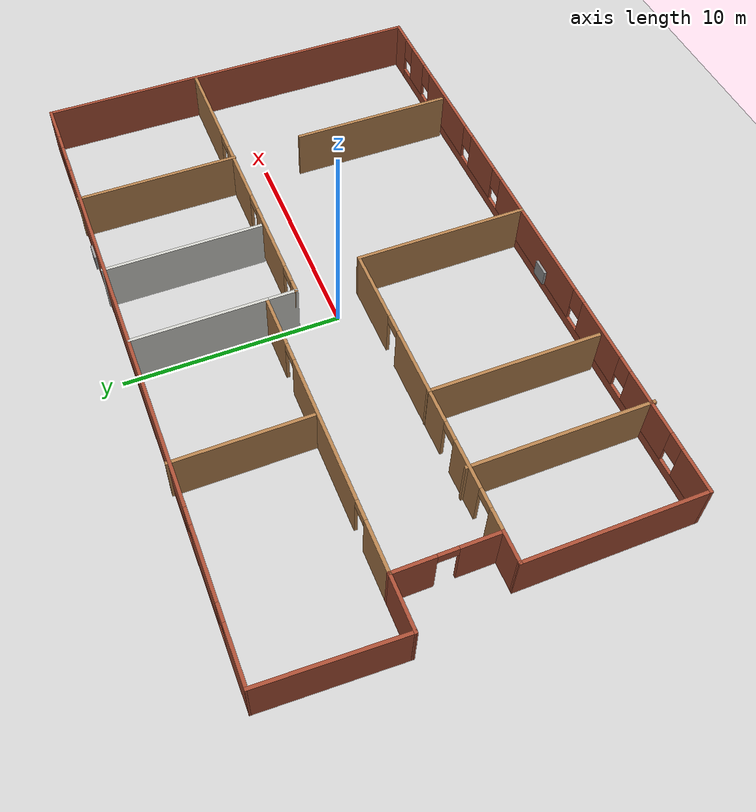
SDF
<sdf version="1.7">
 <world name="default">
  <model name="ground_plane">
   <static>1</static>
   <link name="link1">
    <collision name="collision">
     <geometry><plane><normal>0 0 1</normal><size>100 100</size></plane></geometry>
     <surface>
      <contact><collide_bitmask>65535</collide_bitmask></contact>
      <friction><ode><mu>100</mu><mu2>50</mu2></ode></friction>
     </surface>
    </collision>
    <visual name="visual">
     <cast_shadows>0</cast_shadows>
     <geometry><plane><normal>0 0 1</normal><size>100 100</size></plane></geometry>
     <material>
      <script><uri>file://media/materials/scripts/gazebo.material</uri><name>Gazebo/Grey</name></script>
     </material>
    </visual>
   </link>
  </model>
  <model name="Floor_Plan">
   <pose>-0.077917 -0.10604 0 0 -0 0</pose>
   <link name="Wall_0">
    <pose>0.126492 9.44039 0 0 -0 0</pose>
    <visual name="Wall_0_Visual_0">
     <pose>-14.2048 0 1.25 0 -0 0</pose>
     <geometry><box><size>2.5905 0.15 2.5</size></box></geometry>
     <material>
      <script><uri>file://media/materials/scripts/gazebo.material</uri><name>Gazebo/Bricks</name></script>
      <ambient>1 1 1 1</ambient>
     </material>
     <meta><layer>0</layer></meta>
    </visual>
    <collision name="Wall_0_Collision_0">
     <geometry><box><size>2.5905 0.15 2.5</size></box></geometry>
     <pose>-14.2048 0 1.25 0 -0 0</pose>
    </collision>
    <visual name="Wall_0_Visual_1">
     <pose>1.29525 0 0.25 0 -0 0</pose>
     <geometry><box><size>28.4095 0.15 0.5</size></box></geometry>
     <material>
      <script><uri>file://media/materials/scripts/gazebo.material</uri><name>Gazebo/Bricks</name></script>
      <ambient>1 1 1 1</ambient>
     </material>
     <meta><layer>0</layer></meta>
    </visual>
    <collision name="Wall_0_Collision_1">
     <geometry><box><size>28.4095 0.15 0.5</size></box></geometry>
     <pose>1.29525 0 0.25 0 -0 0</pose>
    </collision>
    <visual name="Wall_0_Visual_2">
     <pose>-10.4857 0 1.5 0 -0 0</pose>
     <geometry><box><size>3.24758 0.15 2</size></box></geometry>
     <material>
      <script><uri>file://media/materials/scripts/gazebo.material</uri><name>Gazebo/Bricks</name></script>
      <ambient>1 1 1 1</ambient>
     </material>
     <meta><layer>0</layer></meta>
    </visual>
    <collision name="Wall_0_Collision_2">
     <geometry><box><size>3.24758 0.15 2</size></box></geometry>
     <pose>-10.4857 0 1.5 0 -0 0</pose>
    </collision>
    <visual name="Wall_0_Visual_3">
     <pose>1.51746 0 1.5 0 -0 0</pose>
     <geometry><box><size>19.1588 0.15 2</size></box></geometry>
     <material>
      <script><uri>file://media/materials/scripts/gazebo.material</uri><name>Gazebo/Bricks</name></script>
      <ambient>1 1 1 1</ambient>
     </material>
     <meta><layer>0</layer></meta>
    </visual>
    <collision name="Wall_0_Collision_3">
     <geometry><box><size>19.1588 0.15 2</size></box></geometry>
     <pose>1.51746 0 1.5 0 -0 0</pose>
    </collision>
    <visual name="Wall_0_Visual_4">
     <pose>12.3343 0 1.5 0 -0 0</pose>
     <geometry><box><size>0.874861 0.15 2</size></box></geometry>
     <material>
      <script><uri>file://media/materials/scripts/gazebo.material</uri><name>Gazebo/Bricks</name></script>
      <ambient>1 1 1 1</ambient>
     </material>
     <meta><layer>0</layer></meta>
    </visual>
    <collision name="Wall_0_Collision_4">
     <geometry><box><size>0.874861 0.15 2</size></box></geometry>
     <pose>12.3343 0 1.5 0 -0 0</pose>
    </collision>
    <visual name="Wall_0_Visual_5">
     <pose>14.5358 0 1.5 0 -0 0</pose>
     <geometry><box><size>1.9283 0.15 2</size></box></geometry>
     <material>
      <script><uri>file://media/materials/scripts/gazebo.material</uri><name>Gazebo/Bricks</name></script>
      <ambient>1 1 1 1</ambient>
     </material>
     <meta><layer>0</layer></meta>
    </visual>
    <collision name="Wall_0_Collision_5">
     <geometry><box><size>1.9283 0.15 2</size></box></geometry>
     <pose>14.5358 0 1.5 0 -0 0</pose>
    </collision>
    <visual name="Wall_0_Visual_6">
     <pose>-12.5095 0 1.9 0 -0 0</pose>
     <geometry><box><size>0.8 0.15 1.2</size></box></geometry>
     <material>
      <script><uri>file://media/materials/scripts/gazebo.material</uri><name>Gazebo/Bricks</name></script>
      <ambient>1 1 1 1</ambient>
     </material>
     <meta><layer>0</layer></meta>
    </visual>
    <collision name="Wall_0_Collision_6">
     <geometry><box><size>0.8 0.15 1.2</size></box></geometry>
     <pose>-12.5095 0 1.9 0 -0 0</pose>
    </collision>
    <visual name="Wall_0_Visual_7">
     <pose>-8.46192 0 1.9 0 -0 0</pose>
     <geometry><box><size>0.8 0.15 1.2</size></box></geometry>
     <material>
      <script><uri>file://media/materials/scripts/gazebo.material</uri><name>Gazebo/Bricks</name></script>
      <ambient>1 1 1 1</ambient>
     </material>
     <meta><layer>0</layer></meta>
    </visual>
    <collision name="Wall_0_Collision_7">
     <geometry><box><size>0.8 0.15 1.2</size></box></geometry>
     <pose>-8.46192 0 1.9 0 -0 0</pose>
    </collision>
    <visual name="Wall_0_Visual_8">
     <pose>11.4968 0 1.9 0 -0 0</pose>
     <geometry><box><size>0.8 0.15 1.2</size></box></geometry>
     <material>
      <script><uri>file://media/materials/scripts/gazebo.material</uri><name>Gazebo/Bricks</name></script>
      <ambient>1 1 1 1</ambient>
     </material>
     <meta><layer>0</layer></meta>
    </visual>
    <collision name="Wall_0_Collision_8">
     <geometry><box><size>0.8 0.15 1.2</size></box></geometry>
     <pose>11.4968 0 1.9 0 -0 0</pose>
    </collision>
    <visual name="Wall_0_Visual_9">
     <pose>13.1717 0 1.9 0 -0 0</pose>
     <geometry><box><size>0.8 0.15 1.2</size></box></geometry>
     <material>
      <script><uri>file://media/materials/scripts/gazebo.material</uri><name>Gazebo/Bricks</name></script>
      <ambient>1 1 1 1</ambient>
     </material>
     <meta><layer>0</layer></meta>
    </visual>
    <collision name="Wall_0_Collision_9">
     <geometry><box><size>0.8 0.15 1.2</size></box></geometry>
     <pose>13.1717 0 1.9 0 -0 0</pose>
    </collision>
   </link>
   <link name="Wall_1">
    <collision name="Wall_1_Collision">
     <geometry><box><size>19 0.15 2.5</size></box></geometry>
     <pose>0 0 1.25 0 -0 0</pose>
    </collision>
    <visual name="Wall_1_Visual">
     <pose>0 0 1.25 0 -0 0</pose>
     <geometry><box><size>19 0.15 2.5</size></box></geometry>
     <material>
      <script><uri>file://media/materials/scripts/gazebo.material</uri><name>Gazebo/Bricks</name></script>
      <ambient>1 1 1 1</ambient>
     </material>
     <meta><layer>0</layer></meta>
    </visual>
    <pose>15.5515 0.015393 0 0 -0 -1.5708</pose>
   </link>
   <link name="Wall_10">
    <collision name="Wall_10_Collision">
     <geometry><box><size>6.25 0.15 2.5</size></box></geometry>
     <pose>0 0 1.25 0 -0 0</pose>
    </collision>
    <visual name="Wall_10_Visual">
     <pose>0 0 1.25 0 -0 0</pose>
     <geometry><box><size>6.25 0.15 2.5</size></box></geometry>
     <material>
      <script><uri>file://media/materials/scripts/gazebo.material</uri><name>Gazebo/CeilingTiled</name></script>
      <ambient>1 1 1 1</ambient>
     </material>
     <meta><layer>0</layer></meta>
    </visual>
    <pose>0.401492 6.34039 0 0 -0 1.5708</pose>
   </link>
   <link name="Wall_12">
    <collision name="Wall_12_Collision">
     <geometry><box><size>6.25 0.15 2.5</size></box></geometry>
     <pose>0 0 1.25 0 -0 0</pose>
    </collision>
    <visual name="Wall_12_Visual">
     <pose>0 0 1.25 0 -0 0</pose>
     <geometry><box><size>6.25 0.15 2.5</size></box></geometry>
     <material>
      <script><uri>file://media/materials/scripts/gazebo.material</uri><name>Gazebo/Wood</name></script>
      <ambient>1 1 1 1</ambient>
     </material>
     <meta><layer>0</layer></meta>
    </visual>
    <pose>-5.86966 6.49851 0 0 -0 -1.5708</pose>
   </link>
   <link name="Wall_14">
    <collision name="Wall_14_Collision">
     <geometry><box><size>1.5 0.15 2.5</size></box></geometry>
     <pose>0 0 1.25 0 -0 0</pose>
    </collision>
    <visual name="Wall_14_Visual">
     <pose>0 0 1.25 0 -0 0</pose>
     <geometry><box><size>1.5 0.15 2.5</size></box></geometry>
     <material>
      <script><uri>file://media/materials/scripts/gazebo.material</uri><name>Gazebo/CeilingTiled</name></script>
      <ambient>1 1 1 1</ambient>
     </material>
     <meta><layer>0</layer></meta>
    </visual>
    <pose>0.401492 2.61539 0 0 -0 -1.5708</pose>
   </link>
   <link name="Wall_15">
    <pose>7.95149 1.94039 0 0 -0 0</pose>
    <visual name="Wall_15_Visual_0">
     <pose>-7.28606 0 1.25 0 -0 0</pose>
     <geometry><box><size>0.67788 0.15 2.5</size></box></geometry>
     <material>
      <script><uri>file://media/materials/scripts/gazebo.material</uri><name>Gazebo/Wood</name></script>
      <ambient>1 1 1 1</ambient>
     </material>
     <meta><layer>0</layer></meta>
    </visual>
    <collision name="Wall_15_Collision_0">
     <geometry><box><size>0.67788 0.15 2.5</size></box></geometry>
     <pose>-7.28606 0 1.25 0 -0 0</pose>
    </collision>
    <visual name="Wall_15_Visual_1">
     <pose>-4.17221 0 1.25 0 -0 0</pose>
     <geometry><box><size>3.74981 0.15 2.5</size></box></geometry>
     <material>
      <script><uri>file://media/materials/scripts/gazebo.material</uri><name>Gazebo/Wood</name></script>
      <ambient>1 1 1 1</ambient>
     </material>
     <meta><layer>0</layer></meta>
    </visual>
    <collision name="Wall_15_Collision_1">
     <geometry><box><size>3.74981 0.15 2.5</size></box></geometry>
     <pose>-4.17221 0 1.25 0 -0 0</pose>
    </collision>
    <visual name="Wall_15_Visual_2">
     <pose>0.357523 0 1.25 0 -0 0</pose>
     <geometry><box><size>3.50966 0.15 2.5</size></box></geometry>
     <material>
      <script><uri>file://media/materials/scripts/gazebo.material</uri><name>Gazebo/Wood</name></script>
      <ambient>1 1 1 1</ambient>
     </material>
     <meta><layer>0</layer></meta>
    </visual>
    <collision name="Wall_15_Collision_2">
     <geometry><box><size>3.50966 0.15 2.5</size></box></geometry>
     <pose>0.357523 0 1.25 0 -0 0</pose>
    </collision>
    <visual name="Wall_15_Visual_3">
     <pose>5.31868 0 1.25 0 -0 0</pose>
     <geometry><box><size>4.61265 0.15 2.5</size></box></geometry>
     <material>
      <script><uri>file://media/materials/scripts/gazebo.material</uri><name>Gazebo/Wood</name></script>
      <ambient>1 1 1 1</ambient>
     </material>
     <meta><layer>0</layer></meta>
    </visual>
    <collision name="Wall_15_Collision_3">
     <geometry><box><size>4.61265 0.15 2.5</size></box></geometry>
     <pose>5.31868 0 1.25 0 -0 0</pose>
    </collision>
    <visual name="Wall_15_Visual_4">
     <pose>-6.49712 0 2.25 0 -0 0</pose>
     <geometry><box><size>0.9 0.15 0.5</size></box></geometry>
     <material>
      <script><uri>file://media/materials/scripts/gazebo.material</uri><name>Gazebo/Wood</name></script>
      <ambient>1 1 1 1</ambient>
     </material>
     <meta><layer>0</layer></meta>
    </visual>
    <collision name="Wall_15_Collision_4">
     <geometry><box><size>0.9 0.15 0.5</size></box></geometry>
     <pose>-6.49712 0 2.25 0 -0 0</pose>
    </collision>
    <visual name="Wall_15_Visual_5">
     <pose>-1.84731 0 2.25 0 -0 0</pose>
     <geometry><box><size>0.9 0.15 0.5</size></box></geometry>
     <material>
      <script><uri>file://media/materials/scripts/gazebo.material</uri><name>Gazebo/Wood</name></script>
      <ambient>1 1 1 1</ambient>
     </material>
     <meta><layer>0</layer></meta>
    </visual>
    <collision name="Wall_15_Collision_5">
     <geometry><box><size>0.9 0.15 0.5</size></box></geometry>
     <pose>-1.84731 0 2.25 0 -0 0</pose>
    </collision>
    <visual name="Wall_15_Visual_6">
     <pose>2.56235 0 2.25 0 -0 0</pose>
     <geometry><box><size>0.9 0.15 0.5</size></box></geometry>
     <material>
      <script><uri>file://media/materials/scripts/gazebo.material</uri><name>Gazebo/Wood</name></script>
      <ambient>1 1 1 1</ambient>
     </material>
     <meta><layer>0</layer></meta>
    </visual>
    <collision name="Wall_15_Collision_6">
     <geometry><box><size>0.9 0.15 0.5</size></box></geometry>
     <pose>2.56235 0 2.25 0 -0 0</pose>
    </collision>
   </link>
   <link name="Wall_17">
    <collision name="Wall_17_Collision">
     <geometry><box><size>7.5 0.15 2.5</size></box></geometry>
     <pose>0 0 1.25 0 -0 0</pose>
    </collision>
    <visual name="Wall_17_Visual">
     <pose>0 0 1.25 0 -0 0</pose>
     <geometry><box><size>7.5 0.15 2.5</size></box></geometry>
     <material>
      <script><uri>file://media/materials/scripts/gazebo.material</uri><name>Gazebo/CeilingTiled</name></script>
      <ambient>1 1 1 1</ambient>
     </material>
     <meta><layer>0</layer></meta>
    </visual>
    <pose>4.59822 5.82699 0 0 -0 -1.5708</pose>
   </link>
   <link name="Wall_19">
    <collision name="Wall_19_Collision">
     <geometry><box><size>7.75 0.15 2.5</size></box></geometry>
     <pose>0 0 1.25 0 -0 0</pose>
    </collision>
    <visual name="Wall_19_Visual">
     <pose>0 0 1.25 0 -0 0</pose>
     <geometry><box><size>7.75 0.15 2.5</size></box></geometry>
     <material>
      <script><uri>file://media/materials/scripts/gazebo.material</uri><name>Gazebo/Wood</name></script>
      <ambient>1 1 1 1</ambient>
     </material>
     <meta><layer>0</layer></meta>
    </visual>
    <pose>9.25061 5.70199 0 0 -0 -1.5708</pose>
   </link>
   <link name="Wall_2">
    <pose>0.501492 -9.40961 0 0 -0 3.14159</pose>
    <visual name="Wall_2_Visual_0">
     <pose>-14.52 0 1.25 0 -0 0</pose>
     <geometry><box><size>1.21002 0.15 2.5</size></box></geometry>
     <material>
      <script><uri>file://media/materials/scripts/gazebo.material</uri><name>Gazebo/Bricks</name></script>
      <ambient>1 1 1 1</ambient>
     </material>
     <meta><layer>0</layer></meta>
    </visual>
    <collision name="Wall_2_Collision_0">
     <geometry><box><size>1.21002 0.15 2.5</size></box></geometry>
     <pose>-14.52 0 1.25 0 -0 0</pose>
    </collision>
    <visual name="Wall_2_Visual_1">
     <pose>0.605012 0 0.25 0 -0 0</pose>
     <geometry><box><size>29.04 0.15 0.5</size></box></geometry>
     <material>
      <script><uri>file://media/materials/scripts/gazebo.material</uri><name>Gazebo/Bricks</name></script>
      <ambient>1 1 1 1</ambient>
     </material>
     <meta><layer>0</layer></meta>
    </visual>
    <collision name="Wall_2_Collision_1">
     <geometry><box><size>29.04 0.15 0.5</size></box></geometry>
     <pose>0.605012 0 0.25 0 -0 0</pose>
    </collision>
    <visual name="Wall_2_Visual_2">
     <pose>-12.3984 0 1.5 0 -0 0</pose>
     <geometry><box><size>1.43315 0.15 2</size></box></geometry>
     <material>
      <script><uri>file://media/materials/scripts/gazebo.material</uri><name>Gazebo/Bricks</name></script>
      <ambient>1 1 1 1</ambient>
     </material>
     <meta><layer>0</layer></meta>
    </visual>
    <collision name="Wall_2_Collision_2">
     <geometry><box><size>1.43315 0.15 2</size></box></geometry>
     <pose>-12.3984 0 1.5 0 -0 0</pose>
    </collision>
    <visual name="Wall_2_Visual_3">
     <pose>-8.7928 0 1.5 0 -0 0</pose>
     <geometry><box><size>4.17806 0.15 2</size></box></geometry>
     <material>
      <script><uri>file://media/materials/scripts/gazebo.material</uri><name>Gazebo/Bricks</name></script>
      <ambient>1 1 1 1</ambient>
     </material>
     <meta><layer>0</layer></meta>
    </visual>
    <collision name="Wall_2_Collision_3">
     <geometry><box><size>4.17806 0.15 2</size></box></geometry>
     <pose>-8.7928 0 1.5 0 -0 0</pose>
    </collision>
    <visual name="Wall_2_Visual_4">
     <pose>-4.72196 0 1.5 0 -0 0</pose>
     <geometry><box><size>2.36363 0.15 2</size></box></geometry>
     <material>
      <script><uri>file://media/materials/scripts/gazebo.material</uri><name>Gazebo/Bricks</name></script>
      <ambient>1 1 1 1</ambient>
     </material>
     <meta><layer>0</layer></meta>
    </visual>
    <collision name="Wall_2_Collision_4">
     <geometry><box><size>2.36363 0.15 2</size></box></geometry>
     <pose>-4.72196 0 1.5 0 -0 0</pose>
    </collision>
    <visual name="Wall_2_Visual_5">
     <pose>0.837652 0 1.5 0 -0 0</pose>
     <geometry><box><size>7.15559 0.15 2</size></box></geometry>
     <material>
      <script><uri>file://media/materials/scripts/gazebo.material</uri><name>Gazebo/Bricks</name></script>
      <ambient>1 1 1 1</ambient>
     </material>
     <meta><layer>0</layer></meta>
    </visual>
    <collision name="Wall_2_Collision_5">
     <geometry><box><size>7.15559 0.15 2</size></box></geometry>
     <pose>0.837652 0 1.5 0 -0 0</pose>
    </collision>
    <visual name="Wall_2_Visual_6">
     <pose>6.76945 0 1.5 0 -0 0</pose>
     <geometry><box><size>3.10801 0.15 2</size></box></geometry>
     <material>
      <script><uri>file://media/materials/scripts/gazebo.material</uri><name>Gazebo/Bricks</name></script>
      <ambient>1 1 1 1</ambient>
     </material>
     <meta><layer>0</layer></meta>
    </visual>
    <collision name="Wall_2_Collision_6">
     <geometry><box><size>3.10801 0.15 2</size></box></geometry>
     <pose>6.76945 0 1.5 0 -0 0</pose>
    </collision>
    <visual name="Wall_2_Visual_7">
     <pose>10.7007 0 1.5 0 -0 0</pose>
     <geometry><box><size>3.15453 0.15 2</size></box></geometry>
     <material>
      <script><uri>file://media/materials/scripts/gazebo.material</uri><name>Gazebo/Bricks</name></script>
      <ambient>1 1 1 1</ambient>
     </material>
     <meta><layer>0</layer></meta>
    </visual>
    <collision name="Wall_2_Collision_7">
     <geometry><box><size>3.15453 0.15 2</size></box></geometry>
     <pose>10.7007 0 1.5 0 -0 0</pose>
    </collision>
    <visual name="Wall_2_Visual_8">
     <pose>14.1015 0 1.5 0 -0 0</pose>
     <geometry><box><size>2.04701 0.15 2</size></box></geometry>
     <material>
      <script><uri>file://media/materials/scripts/gazebo.material</uri><name>Gazebo/Bricks</name></script>
      <ambient>1 1 1 1</ambient>
     </material>
     <meta><layer>0</layer></meta>
    </visual>
    <collision name="Wall_2_Collision_8">
     <geometry><box><size>2.04701 0.15 2</size></box></geometry>
     <pose>14.1015 0 1.5 0 -0 0</pose>
    </collision>
    <visual name="Wall_2_Visual_9">
     <pose>-13.515 0 1.9 0 -0 0</pose>
     <geometry><box><size>0.8 0.15 1.2</size></box></geometry>
     <material>
      <script><uri>file://media/materials/scripts/gazebo.material</uri><name>Gazebo/Bricks</name></script>
      <ambient>1 1 1 1</ambient>
     </material>
     <meta><layer>0</layer></meta>
    </visual>
    <collision name="Wall_2_Collision_9">
     <geometry><box><size>0.8 0.15 1.2</size></box></geometry>
     <pose>-13.515 0 1.9 0 -0 0</pose>
    </collision>
    <visual name="Wall_2_Visual_10">
     <pose>-11.2818 0 1.9 0 -0 0</pose>
     <geometry><box><size>0.8 0.15 1.2</size></box></geometry>
     <material>
      <script><uri>file://media/materials/scripts/gazebo.material</uri><name>Gazebo/Bricks</name></script>
      <ambient>1 1 1 1</ambient>
     </material>
     <meta><layer>0</layer></meta>
    </visual>
    <collision name="Wall_2_Collision_10">
     <geometry><box><size>0.8 0.15 1.2</size></box></geometry>
     <pose>-11.2818 0 1.9 0 -0 0</pose>
    </collision>
    <visual name="Wall_2_Visual_11">
     <pose>-6.30377 0 1.9 0 -0 0</pose>
     <geometry><box><size>0.8 0.15 1.2</size></box></geometry>
     <material>
      <script><uri>file://media/materials/scripts/gazebo.material</uri><name>Gazebo/Bricks</name></script>
      <ambient>1 1 1 1</ambient>
     </material>
     <meta><layer>0</layer></meta>
    </visual>
    <collision name="Wall_2_Collision_11">
     <geometry><box><size>0.8 0.15 1.2</size></box></geometry>
     <pose>-6.30377 0 1.9 0 -0 0</pose>
    </collision>
    <visual name="Wall_2_Visual_12">
     <pose>-3.14014 0 1.9 0 -0 0</pose>
     <geometry><box><size>0.8 0.15 1.2</size></box></geometry>
     <material>
      <script><uri>file://media/materials/scripts/gazebo.material</uri><name>Gazebo/Bricks</name></script>
      <ambient>1 1 1 1</ambient>
     </material>
     <meta><layer>0</layer></meta>
    </visual>
    <collision name="Wall_2_Collision_12">
     <geometry><box><size>0.8 0.15 1.2</size></box></geometry>
     <pose>-3.14014 0 1.9 0 -0 0</pose>
    </collision>
    <visual name="Wall_2_Visual_13">
     <pose>4.81545 0 1.9 0 -0 0</pose>
     <geometry><box><size>0.8 0.15 1.2</size></box></geometry>
     <material>
      <script><uri>file://media/materials/scripts/gazebo.material</uri><name>Gazebo/Bricks</name></script>
      <ambient>1 1 1 1</ambient>
     </material>
     <meta><layer>0</layer></meta>
    </visual>
    <collision name="Wall_2_Collision_13">
     <geometry><box><size>0.8 0.15 1.2</size></box></geometry>
     <pose>4.81545 0 1.9 0 -0 0</pose>
    </collision>
    <visual name="Wall_2_Visual_14">
     <pose>8.72346 0 1.9 0 -0 0</pose>
     <geometry><box><size>0.8 0.15 1.2</size></box></geometry>
     <material>
      <script><uri>file://media/materials/scripts/gazebo.material</uri><name>Gazebo/Bricks</name></script>
      <ambient>1 1 1 1</ambient>
     </material>
     <meta><layer>0</layer></meta>
    </visual>
    <collision name="Wall_2_Collision_14">
     <geometry><box><size>0.8 0.15 1.2</size></box></geometry>
     <pose>8.72346 0 1.9 0 -0 0</pose>
    </collision>
    <visual name="Wall_2_Visual_15">
     <pose>12.678 0 1.9 0 -0 0</pose>
     <geometry><box><size>0.8 0.15 1.2</size></box></geometry>
     <material>
      <script><uri>file://media/materials/scripts/gazebo.material</uri><name>Gazebo/Bricks</name></script>
      <ambient>1 1 1 1</ambient>
     </material>
     <meta><layer>0</layer></meta>
    </visual>
    <collision name="Wall_2_Collision_15">
     <geometry><box><size>0.8 0.15 1.2</size></box></geometry>
     <pose>12.678 0 1.9 0 -0 0</pose>
    </collision>
   </link>
   <link name="Wall_21">
    <pose>-6.02351 -1.30961 0 0 -0 0</pose>
    <visual name="Wall_21_Visual_0">
     <pose>-6.69387 0 1.25 0 -0 0</pose>
     <geometry><box><size>1.11225 0.15 2.5</size></box></geometry>
     <material>
      <script><uri>file://media/materials/scripts/gazebo.material</uri><name>Gazebo/Wood</name></script>
      <ambient>1 0.764706 0.305882 1</ambient>
     </material>
     <meta><layer>0</layer></meta>
    </visual>
    <collision name="Wall_21_Collision_0">
     <geometry><box><size>1.11225 0.15 2.5</size></box></geometry>
     <pose>-6.69387 0 1.25 0 -0 0</pose>
    </collision>
    <visual name="Wall_21_Visual_1">
     <pose>-4.08716 0 1.25 0 -0 0</pose>
     <geometry><box><size>2.30118 0.15 2.5</size></box></geometry>
     <material>
      <script><uri>file://media/materials/scripts/gazebo.material</uri><name>Gazebo/Wood</name></script>
      <ambient>1 0.764706 0.305882 1</ambient>
     </material>
     <meta><layer>0</layer></meta>
    </visual>
    <collision name="Wall_21_Collision_1">
     <geometry><box><size>2.30118 0.15 2.5</size></box></geometry>
     <pose>-4.08716 0 1.25 0 -0 0</pose>
    </collision>
    <visual name="Wall_21_Visual_2">
     <pose>0.374652 0 1.25 0 -0 0</pose>
     <geometry><box><size>4.82244 0.15 2.5</size></box></geometry>
     <material>
      <script><uri>file://media/materials/scripts/gazebo.material</uri><name>Gazebo/Wood</name></script>
      <ambient>1 0.764706 0.305882 1</ambient>
     </material>
     <meta><layer>0</layer></meta>
    </visual>
    <collision name="Wall_21_Collision_2">
     <geometry><box><size>4.82244 0.15 2.5</size></box></geometry>
     <pose>0.374652 0 1.25 0 -0 0</pose>
    </collision>
    <visual name="Wall_21_Visual_3">
     <pose>5.46794 0 1.25 0 -0 0</pose>
     <geometry><box><size>3.56413 0.15 2.5</size></box></geometry>
     <material>
      <script><uri>file://media/materials/scripts/gazebo.material</uri><name>Gazebo/Wood</name></script>
      <ambient>1 0.764706 0.305882 1</ambient>
     </material>
     <meta><layer>0</layer></meta>
    </visual>
    <collision name="Wall_21_Collision_3">
     <geometry><box><size>3.56413 0.15 2.5</size></box></geometry>
     <pose>5.46794 0 1.25 0 -0 0</pose>
    </collision>
    <visual name="Wall_21_Visual_4">
     <pose>-5.68775 0 2.25 0 -0 0</pose>
     <geometry><box><size>0.9 0.15 0.5</size></box></geometry>
     <material>
      <script><uri>file://media/materials/scripts/gazebo.material</uri><name>Gazebo/Wood</name></script>
      <ambient>1 0.764706 0.305882 1</ambient>
     </material>
     <meta><layer>0</layer></meta>
    </visual>
    <collision name="Wall_21_Collision_4">
     <geometry><box><size>0.9 0.15 0.5</size></box></geometry>
     <pose>-5.68775 0 2.25 0 -0 0</pose>
    </collision>
    <visual name="Wall_21_Visual_5">
     <pose>-2.48657 0 2.25 0 -0 0</pose>
     <geometry><box><size>0.9 0.15 0.5</size></box></geometry>
     <material>
      <script><uri>file://media/materials/scripts/gazebo.material</uri><name>Gazebo/Wood</name></script>
      <ambient>1 0.764706 0.305882 1</ambient>
     </material>
     <meta><layer>0</layer></meta>
    </visual>
    <collision name="Wall_21_Collision_5">
     <geometry><box><size>0.9 0.15 0.5</size></box></geometry>
     <pose>-2.48657 0 2.25 0 -0 0</pose>
    </collision>
    <visual name="Wall_21_Visual_6">
     <pose>3.23587 0 2.25 0 -0 0</pose>
     <geometry><box><size>0.9 0.15 0.5</size></box></geometry>
     <material>
      <script><uri>file://media/materials/scripts/gazebo.material</uri><name>Gazebo/Wood</name></script>
      <ambient>1 0.764706 0.305882 1</ambient>
     </material>
     <meta><layer>0</layer></meta>
    </visual>
    <collision name="Wall_21_Collision_6">
     <geometry><box><size>0.9 0.15 0.5</size></box></geometry>
     <pose>3.23587 0 2.25 0 -0 0</pose>
    </collision>
   </link>
   <link name="Wall_22">
    <collision name="Wall_22_Collision">
     <geometry><box><size>8.25 0.15 2.5</size></box></geometry>
     <pose>0 0 1.25 0 -0 0</pose>
    </collision>
    <visual name="Wall_22_Visual">
     <pose>0 0 1.25 0 -0 0</pose>
     <geometry><box><size>8.25 0.15 2.5</size></box></geometry>
     <material>
      <script><uri>file://media/materials/scripts/gazebo.material</uri><name>Gazebo/Wood</name></script>
      <ambient>1 0.764706 0.305882 1</ambient>
     </material>
     <meta><layer>0</layer></meta>
    </visual>
    <pose>1.15149 -5.35961 0 0 -0 -1.5708</pose>
   </link>
   <link name="Wall_24">
    <collision name="Wall_24_Collision">
     <geometry><box><size>8 0.15 2.5</size></box></geometry>
     <pose>0 0 1.25 0 -0 0</pose>
    </collision>
    <visual name="Wall_24_Visual">
     <pose>0 0 1.25 0 -0 0</pose>
     <geometry><box><size>8 0.15 2.5</size></box></geometry>
     <material>
      <script><uri>file://media/materials/scripts/gazebo.material</uri><name>Gazebo/Wood</name></script>
      <ambient>1 0.764706 0.305882 1</ambient>
     </material>
     <meta><layer>0</layer></meta>
    </visual>
    <pose>-6.47447 -5.21656 0 0 -0 -1.5708</pose>
   </link>
   <link name="Wall_26">
    <collision name="Wall_26_Collision">
     <geometry><box><size>8.5 0.15 2.5</size></box></geometry>
     <pose>0 0 1.25 0 -0 0</pose>
    </collision>
    <visual name="Wall_26_Visual">
     <pose>0 0 1.25 0 -0 0</pose>
     <geometry><box><size>8.5 0.15 2.5</size></box></geometry>
     <material>
      <script><uri>file://media/materials/scripts/gazebo.material</uri><name>Gazebo/Wood</name></script>
      <ambient>1 1 1 1</ambient>
     </material>
     <meta><layer>0</layer></meta>
    </visual>
    <pose>-10.2429 -5.37351 0 0 -0 -1.5708</pose>
   </link>
   <link name="Wall_28">
    <collision name="Wall_28_Collision">
     <geometry><box><size>7.75 0.15 2.5</size></box></geometry>
     <pose>0 0 1.25 0 -0 0</pose>
    </collision>
    <visual name="Wall_28_Visual">
     <pose>0 0 1.25 0 -0 0</pose>
     <geometry><box><size>7.75 0.15 2.5</size></box></geometry>
     <material>
      <script><uri>file://media/materials/scripts/gazebo.material</uri><name>Gazebo/Wood</name></script>
      <ambient>1 1 1 1</ambient>
     </material>
     <meta><layer>0</layer></meta>
    </visual>
    <pose>9.48323 -5.3541 0 0 -0 1.5708</pose>
   </link>
   <link name="Wall_3">
    <collision name="Wall_3_Collision">
     <geometry><box><size>8.25 0.15 2.5</size></box></geometry>
     <pose>0 0 1.25 0 -0 0</pose>
    </collision>
    <visual name="Wall_3_Visual">
     <pose>0 0 1.25 0 -0 0</pose>
     <geometry><box><size>8.25 0.15 2.5</size></box></geometry>
     <material>
      <script><uri>file://media/materials/scripts/gazebo.material</uri><name>Gazebo/Bricks</name></script>
      <ambient>1 1 1 1</ambient>
     </material>
     <meta><layer>0</layer></meta>
    </visual>
    <pose>-14.5485 -5.35961 0 0 -0 1.5708</pose>
   </link>
   <link name="Wall_4">
    <collision name="Wall_4_Collision">
     <geometry><box><size>1.5 0.15 2.5</size></box></geometry>
     <pose>0 0 1.25 0 -0 0</pose>
    </collision>
    <visual name="Wall_4_Visual">
     <pose>0 0 1.25 0 -0 0</pose>
     <geometry><box><size>1.5 0.15 2.5</size></box></geometry>
     <material>
      <script><uri>file://media/materials/scripts/gazebo.material</uri><name>Gazebo/Bricks</name></script>
      <ambient>1 1 1 1</ambient>
     </material>
     <meta><layer>0</layer></meta>
    </visual>
    <pose>-13.8735 -1.30961 0 0 -0 0</pose>
   </link>
   <link name="Wall_5">
    <pose>-13.1985 0.990393 0 0 -0 1.5708</pose>
    <visual name="Wall_5_Visual_0">
     <pose>-1.43617 0 1.25 0 -0 0</pose>
     <geometry><box><size>1.87766 0.15 2.5</size></box></geometry>
     <material>
      <script><uri>file://media/materials/scripts/gazebo.material</uri><name>Gazebo/Bricks</name></script>
      <ambient>1 1 1 1</ambient>
     </material>
     <meta><layer>0</layer></meta>
    </visual>
    <collision name="Wall_5_Collision_0">
     <geometry><box><size>1.87766 0.15 2.5</size></box></geometry>
     <pose>-1.43617 0 1.25 0 -0 0</pose>
    </collision>
    <visual name="Wall_5_Visual_1">
     <pose>1.38883 0 1.25 0 -0 0</pose>
     <geometry><box><size>1.97234 0.15 2.5</size></box></geometry>
     <material>
      <script><uri>file://media/materials/scripts/gazebo.material</uri><name>Gazebo/Bricks</name></script>
      <ambient>1 1 1 1</ambient>
     </material>
     <meta><layer>0</layer></meta>
    </visual>
    <collision name="Wall_5_Collision_1">
     <geometry><box><size>1.97234 0.15 2.5</size></box></geometry>
     <pose>1.38883 0 1.25 0 -0 0</pose>
    </collision>
    <visual name="Wall_5_Visual_2">
     <pose>-0.047338 0 2.25 0 -0 0</pose>
     <geometry><box><size>0.9 0.15 0.5</size></box></geometry>
     <material>
      <script><uri>file://media/materials/scripts/gazebo.material</uri><name>Gazebo/Bricks</name></script>
      <ambient>1 1 1 1</ambient>
     </material>
     <meta><layer>0</layer></meta>
    </visual>
    <collision name="Wall_5_Collision_2">
     <geometry><box><size>0.9 0.15 0.5</size></box></geometry>
     <pose>-0.047338 0 2.25 0 -0 0</pose>
    </collision>
   </link>
   <link name="Wall_6">
    <collision name="Wall_6_Collision">
     <geometry><box><size>2.5 0.15 2.5</size></box></geometry>
     <pose>0 0 1.25 0 -0 0</pose>
    </collision>
    <visual name="Wall_6_Visual">
     <pose>0 0 1.25 0 -0 0</pose>
     <geometry><box><size>2.5 0.15 2.5</size></box></geometry>
     <material>
      <script><uri>file://media/materials/scripts/gazebo.material</uri><name>Gazebo/Bricks</name></script>
      <ambient>1 1 1 1</ambient>
     </material>
     <meta><layer>0</layer></meta>
    </visual>
    <pose>-14.3735 3.29039 0 0 -0 3.14159</pose>
   </link>
   <link name="Wall_7">
    <collision name="Wall_7_Collision">
     <geometry><box><size>6.30508 0.15 2.5</size></box></geometry>
     <pose>0 0 1.25 0 -0 0</pose>
    </collision>
    <visual name="Wall_7_Visual">
     <pose>0 0 1.25 0 -0 0</pose>
     <geometry><box><size>6.30508 0.15 2.5</size></box></geometry>
     <material>
      <script><uri>file://media/materials/scripts/gazebo.material</uri><name>Gazebo/Bricks</name></script>
      <ambient>1 1 1 1</ambient>
     </material>
     <meta><layer>0</layer></meta>
    </visual>
    <pose>-15.4235 6.36539 0 0 -0 1.53017</pose>
   </link>
   <link name="Wall_9">
    <pose>-6.39851 3.29039 0 0 -0 0</pose>
    <visual name="Wall_9_Visual_0">
     <pose>-5.69451 0 1.25 0 -0 0</pose>
     <geometry><box><size>2.36099 0.15 2.5</size></box></geometry>
     <material>
      <script><uri>file://media/materials/scripts/gazebo.material</uri><name>Gazebo/Wood</name></script>
      <ambient>1 1 1 1</ambient>
     </material>
     <meta><layer>0</layer></meta>
    </visual>
    <collision name="Wall_9_Collision_0">
     <geometry><box><size>2.36099 0.15 2.5</size></box></geometry>
     <pose>-5.69451 0 1.25 0 -0 0</pose>
    </collision>
    <visual name="Wall_9_Visual_1">
     <pose>-0.12718 0 1.25 0 -0 0</pose>
     <geometry><box><size>6.97366 0.15 2.5</size></box></geometry>
     <material>
      <script><uri>file://media/materials/scripts/gazebo.material</uri><name>Gazebo/Wood</name></script>
      <ambient>1 1 1 1</ambient>
     </material>
     <meta><layer>0</layer></meta>
    </visual>
    <collision name="Wall_9_Collision_1">
     <geometry><box><size>6.97366 0.15 2.5</size></box></geometry>
     <pose>-0.12718 0 1.25 0 -0 0</pose>
    </collision>
    <visual name="Wall_9_Visual_2">
     <pose>5.56733 0 1.25 0 -0 0</pose>
     <geometry><box><size>2.61535 0.15 2.5</size></box></geometry>
     <material>
      <script><uri>file://media/materials/scripts/gazebo.material</uri><name>Gazebo/Wood</name></script>
      <ambient>1 1 1 1</ambient>
     </material>
     <meta><layer>0</layer></meta>
    </visual>
    <collision name="Wall_9_Collision_2">
     <geometry><box><size>2.61535 0.15 2.5</size></box></geometry>
     <pose>5.56733 0 1.25 0 -0 0</pose>
    </collision>
    <visual name="Wall_9_Visual_3">
     <pose>-4.06401 0 2.25 0 -0 0</pose>
     <geometry><box><size>0.9 0.15 0.5</size></box></geometry>
     <material>
      <script><uri>file://media/materials/scripts/gazebo.material</uri><name>Gazebo/Wood</name></script>
      <ambient>1 1 1 1</ambient>
     </material>
     <meta><layer>0</layer></meta>
    </visual>
    <collision name="Wall_9_Collision_3">
     <geometry><box><size>0.9 0.15 0.5</size></box></geometry>
     <pose>-4.06401 0 2.25 0 -0 0</pose>
    </collision>
    <visual name="Wall_9_Visual_4">
     <pose>3.80965 0 2.25 0 -0 0</pose>
     <geometry><box><size>0.9 0.15 0.5</size></box></geometry>
     <material>
      <script><uri>file://media/materials/scripts/gazebo.material</uri><name>Gazebo/Wood</name></script>
      <ambient>1 1 1 1</ambient>
     </material>
     <meta><layer>0</layer></meta>
    </visual>
    <collision name="Wall_9_Collision_4">
     <geometry><box><size>0.9 0.15 0.5</size></box></geometry>
     <pose>3.80965 0 2.25 0 -0 0</pose>
    </collision>
   </link>
   <link name="Window_10">
    <collision name="Window_10_Collision">
     <geometry><box><size>0.8 0.17 0.8</size></box></geometry>
     <pose>0 0 0.4 0 -0 0</pose>
    </collision>
    <visual name="Window_10_Visual">
     <pose>0 0 0.4 0 -0 0</pose>
     <geometry><box><size>0.8 0.17 0.8</size></box></geometry>
     <material>
      <script><uri>file://media/materials/scripts/gazebo.material</uri><name>Gazebo/Grey</name></script>
     </material>
    </visual>
    <pose>-1.42947 -9.29221 0.5 0 -0 0</pose>
   </link>
   <link name="Window_2">
    <collision name="Window_2_Collision">
     <geometry><box><size>0.8 0.17 0.8</size></box></geometry>
     <pose>0 0 0.4 0 -0 0</pose>
    </collision>
    <visual name="Window_2_Visual">
     <pose>0 0 0.4 0 -0 0</pose>
     <geometry><box><size>0.8 0.17 0.8</size></box></geometry>
     <material>
      <script><uri>file://media/materials/scripts/gazebo.material</uri><name>Gazebo/Grey</name></script>
     </material>
    </visual>
    <pose>6.87789 9.54851 0.5 0 -0 0</pose>
   </link>
   <static>1</static>
  </model>
 </world>
</sdf>
